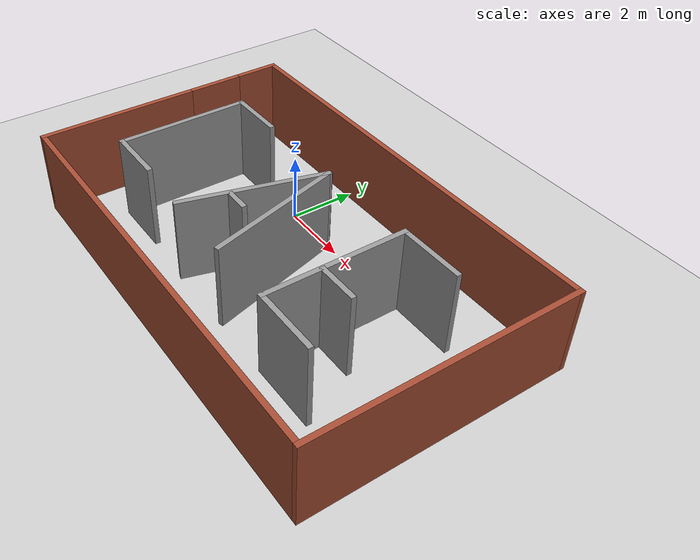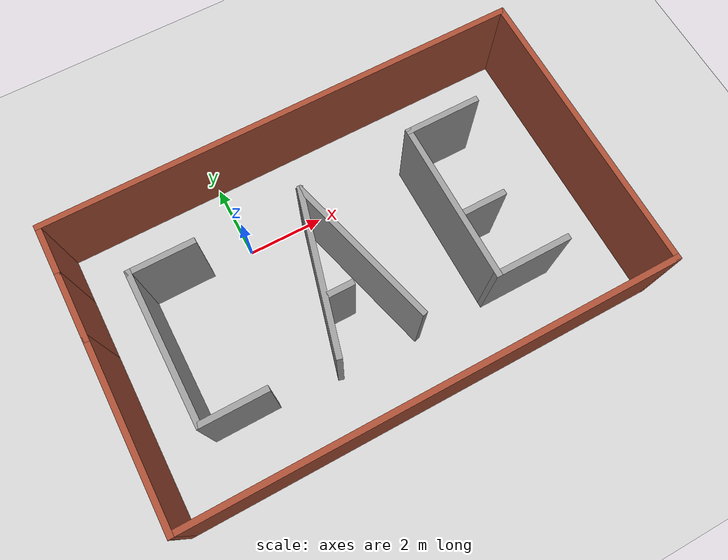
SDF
<sdf version="1.7">
 <world name="default">
  <light name="sun" type="directional">
   <pose>0 0 10 0 -0 0</pose>
   <diffuse>0.8 0.8 0.8 1</diffuse>
   <specular>0.2 0.2 0.2 1</specular>
   <attenuation>
    <range>1000</range>
    <constant>0.9</constant>
    <linear>0.01</linear>
    <quadratic>0.001</quadratic>
   </attenuation>
   <direction>-0.5 0.1 -0.9</direction>
   <spot><inner_angle>0</inner_angle><outer_angle>0</outer_angle><falloff>0</falloff></spot>
  </light>
  <model name="ground_plane">
   <static>1</static>
   <link name="link">
    <collision name="collision">
     <geometry><plane><normal>0 0 1</normal><size>100 100</size></plane></geometry>
     <surface>
      <contact><collide_bitmask>65535</collide_bitmask></contact>
      <friction><ode><mu>100</mu><mu2>50</mu2></ode></friction>
     </surface>
    </collision>
    <visual name="visual">
     <cast_shadows>0</cast_shadows>
     <geometry><plane><normal>0 0 1</normal><size>100 100</size></plane></geometry>
     <material>
      <script><uri>file://media/materials/scripts/gazebo.material</uri><name>Gazebo/Grey</name></script>
     </material>
    </visual>
   </link>
  </model>
  <gravity>0 0 -9.8</gravity>
  <magnetic_field>6e-06 2.3e-05 -4.2e-05</magnetic_field>
  <atmosphere type="adiabatic"/>
  <physics type="ode">
   <max_step_size>0.001</max_step_size>
   <real_time_factor>1</real_time_factor>
   <real_time_update_rate>1000</real_time_update_rate>
  </physics>
  <scene><ambient>0.4 0.4 0.4 1</ambient><background>0.7 0.7 0.7 1</background><shadows>1</shadows></scene>
  <spherical_coordinates>
   <surface_model>EARTH_WGS84</surface_model>
   <latitude_deg>0</latitude_deg>
   <longitude_deg>0</longitude_deg>
   <elevation>0</elevation>
   <heading_deg>0</heading_deg>
  </spherical_coordinates>
  <model name="CaeWorld">
   <pose>2.1 -1.82 0 0 -0 0</pose>
   <link name="Wall_0">
    <collision name="Wall_0_Collision">
     <geometry><box><size>4.75 0.15 2.5</size></box></geometry>
     <pose>0 0 1.25 0 -0 0</pose>
    </collision>
    <visual name="Wall_0_Visual">
     <pose>0 0 1.25 0 -0 0</pose>
     <geometry><box><size>4.75 0.15 2.5</size></box></geometry>
     <material>
      <script><uri>file://media/materials/scripts/gazebo.material</uri><name>Gazebo/Bricks</name></script>
      <ambient>1 1 1 1</ambient>
     </material>
     <meta><layer>0</layer></meta>
    </visual>
    <pose>-6.3 -1.5 0 0 -0 -1.5708</pose>
   </link>
   <link name="Wall_1">
    <collision name="Wall_1_Collision">
     <geometry><box><size>12.75 0.15 2.5</size></box></geometry>
     <pose>0 0 1.25 0 -0 0</pose>
    </collision>
    <visual name="Wall_1_Visual">
     <pose>0 0 1.25 0 -0 0</pose>
     <geometry><box><size>12.75 0.15 2.5</size></box></geometry>
     <material>
      <script><uri>file://media/materials/scripts/gazebo.material</uri><name>Gazebo/Bricks</name></script>
      <ambient>1 1 1 1</ambient>
     </material>
     <meta><layer>0</layer></meta>
    </visual>
    <pose>-0 -3.8 0 0 -0 0</pose>
   </link>
   <link name="Wall_12">
    <collision name="Wall_12_Collision">
     <geometry><box><size>1.75 0.15 2.5</size></box></geometry>
     <pose>0 0 1.25 0 -0 0</pose>
    </collision>
    <visual name="Wall_12_Visual">
     <pose>0 0 1.25 0 -0 0</pose>
     <geometry><box><size>1.75 0.15 2.5</size></box></geometry>
     <material>
      <script><uri>file://media/materials/scripts/gazebo.material</uri><name>Gazebo/Grey</name></script>
      <ambient>1 1 1 1</ambient>
     </material>
     <meta><layer>0</layer></meta>
    </visual>
    <pose>-4.08283 -2.0708 0 0 -0 0</pose>
   </link>
   <link name="Wall_14">
    <collision name="Wall_14_Collision">
     <geometry><box><size>4.25 0.15 2.5</size></box></geometry>
     <pose>0 0 1.25 0 -0 0</pose>
    </collision>
    <visual name="Wall_14_Visual">
     <pose>0 0 1.25 0 -0 0</pose>
     <geometry><box><size>4.25 0.15 2.5</size></box></geometry>
     <material>
      <script><uri>file://media/materials/scripts/gazebo.material</uri><name>Gazebo/Grey</name></script>
      <ambient>1 1 1 1</ambient>
     </material>
     <meta><layer>0</layer></meta>
    </visual>
    <pose>-1.0392 -0.186787 0 0 -0 1.309</pose>
   </link>
   <link name="Wall_15">
    <collision name="Wall_15_Collision">
     <geometry><box><size>4.25 0.15 2.5</size></box></geometry>
     <pose>0 0 1.25 0 -0 0</pose>
    </collision>
    <visual name="Wall_15_Visual">
     <pose>0 0 1.25 0 -0 0</pose>
     <geometry><box><size>4.25 0.15 2.5</size></box></geometry>
     <material>
      <script><uri>file://media/materials/scripts/gazebo.material</uri><name>Gazebo/Grey</name></script>
      <ambient>1 1 1 1</ambient>
     </material>
     <meta><layer>0</layer></meta>
    </visual>
    <pose>0.021961 -0.186787 0 0 -0 -1.309</pose>
   </link>
   <link name="Wall_18">
    <collision name="Wall_18_Collision">
     <geometry><box><size>0.75 0.15 2.5</size></box></geometry>
     <pose>0 0 1.25 0 -0 0</pose>
    </collision>
    <visual name="Wall_18_Visual">
     <pose>0 0 1.25 0 -0 0</pose>
     <geometry><box><size>0.75 0.15 2.5</size></box></geometry>
     <material>
      <script><uri>file://media/materials/scripts/gazebo.material</uri><name>Gazebo/Grey</name></script>
      <ambient>1 1 1 1</ambient>
     </material>
     <meta><layer>0</layer></meta>
    </visual>
    <pose>-0.841513 -0.820965 0 0 -0 0</pose>
   </link>
   <link name="Wall_2">
    <collision name="Wall_2_Collision">
     <geometry><box><size>7.75 0.15 2.5</size></box></geometry>
     <pose>0 0 1.25 0 -0 0</pose>
    </collision>
    <visual name="Wall_2_Visual">
     <pose>0 0 1.25 0 -0 0</pose>
     <geometry><box><size>7.75 0.15 2.5</size></box></geometry>
     <material>
      <script><uri>file://media/materials/scripts/gazebo.material</uri><name>Gazebo/Bricks</name></script>
      <ambient>1 1 1 1</ambient>
     </material>
     <meta><layer>0</layer></meta>
    </visual>
    <pose>6.3 0 0 0 -0 1.5708</pose>
   </link>
   <link name="Wall_20">
    <collision name="Wall_20_Collision">
     <geometry><box><size>4.25 0.15 2.5</size></box></geometry>
     <pose>0 0 1.25 0 -0 0</pose>
    </collision>
    <visual name="Wall_20_Visual">
     <pose>0 0 1.25 0 -0 0</pose>
     <geometry><box><size>4.25 0.15 2.5</size></box></geometry>
     <material>
      <script><uri>file://media/materials/scripts/gazebo.material</uri><name>Gazebo/Grey</name></script>
      <ambient>1 1 1 1</ambient>
     </material>
     <meta><layer>0</layer></meta>
    </visual>
    <pose>2.49872 -0.147525 0 0 -0 1.5708</pose>
   </link>
   <link name="Wall_21">
    <collision name="Wall_21_Collision">
     <geometry><box><size>2 0.15 2.5</size></box></geometry>
     <pose>0 0 1.25 0 -0 0</pose>
    </collision>
    <visual name="Wall_21_Visual">
     <pose>0 0 1.25 0 -0 0</pose>
     <geometry><box><size>2 0.15 2.5</size></box></geometry>
     <material>
      <script><uri>file://media/materials/scripts/gazebo.material</uri><name>Gazebo/Grey</name></script>
      <ambient>1 1 1 1</ambient>
     </material>
     <meta><layer>0</layer></meta>
    </visual>
    <pose>3.42372 1.90247 0 0 -0 0</pose>
   </link>
   <link name="Wall_23">
    <collision name="Wall_23_Collision">
     <geometry><box><size>1.25 0.15 2.5</size></box></geometry>
     <pose>0 0 1.25 0 -0 0</pose>
    </collision>
    <visual name="Wall_23_Visual">
     <pose>0 0 1.25 0 -0 0</pose>
     <geometry><box><size>1.25 0.15 2.5</size></box></geometry>
     <material>
      <script><uri>file://media/materials/scripts/gazebo.material</uri><name>Gazebo/Grey</name></script>
      <ambient>1 1 1 1</ambient>
     </material>
     <meta><layer>0</layer></meta>
    </visual>
    <pose>3.07931 -0.545653 0 0 -0 0</pose>
   </link>
   <link name="Wall_25">
    <collision name="Wall_25_Collision">
     <geometry><box><size>2 0.15 2.5</size></box></geometry>
     <pose>0 0 1.25 0 -0 0</pose>
    </collision>
    <visual name="Wall_25_Visual">
     <pose>0 0 1.25 0 -0 0</pose>
     <geometry><box><size>2 0.15 2.5</size></box></geometry>
     <material>
      <script><uri>file://media/materials/scripts/gazebo.material</uri><name>Gazebo/Grey</name></script>
      <ambient>1 1 1 1</ambient>
     </material>
     <meta><layer>0</layer></meta>
    </visual>
    <pose>3.42372 -2.19753 0 0 -0 0</pose>
   </link>
   <link name="Wall_3">
    <collision name="Wall_3_Collision">
     <geometry><box><size>12.75 0.15 2.5</size></box></geometry>
     <pose>0 0 1.25 0 -0 0</pose>
    </collision>
    <visual name="Wall_3_Visual">
     <pose>0 0 1.25 0 -0 0</pose>
     <geometry><box><size>12.75 0.15 2.5</size></box></geometry>
     <material>
      <script><uri>file://media/materials/scripts/gazebo.material</uri><name>Gazebo/Bricks</name></script>
      <ambient>1 1 1 1</ambient>
     </material>
     <meta><layer>0</layer></meta>
    </visual>
    <pose>-0 3.8 0 0 -0 3.14159</pose>
   </link>
   <link name="Wall_4">
    <collision name="Wall_4_Collision">
     <geometry><box><size>1.5 0.15 2.5</size></box></geometry>
     <pose>0 0 1.25 0 -0 0</pose>
    </collision>
    <visual name="Wall_4_Visual">
     <pose>0 0 1.25 0 -0 0</pose>
     <geometry><box><size>1.5 0.15 2.5</size></box></geometry>
     <material>
      <script><uri>file://media/materials/scripts/gazebo.material</uri><name>Gazebo/Bricks</name></script>
      <ambient>1 1 1 1</ambient>
     </material>
     <meta><layer>0</layer></meta>
    </visual>
    <pose>-6.3 3.125 0 0 -0 -1.5708</pose>
   </link>
   <link name="Wall_5">
    <collision name="Wall_5_Collision">
     <geometry><box><size>1.8 0.15 2.5</size></box></geometry>
     <pose>0 0 1.25 0 -0 0</pose>
    </collision>
    <visual name="Wall_5_Visual">
     <pose>0 0 1.25 0 -0 0</pose>
     <geometry><box><size>1.8 0.15 2.5</size></box></geometry>
     <material>
      <script><uri>file://media/materials/scripts/gazebo.material</uri><name>Gazebo/Bricks</name></script>
      <ambient>1 1 1 1</ambient>
     </material>
     <meta><layer>0</layer></meta>
    </visual>
    <pose>-6.3 1.625 0 0 -0 -1.5708</pose>
   </link>
   <link name="Wall_7">
    <collision name="Wall_7_Collision">
     <geometry><box><size>1.75 0.15 2.5</size></box></geometry>
     <pose>0 0 1.25 0 -0 0</pose>
    </collision>
    <visual name="Wall_7_Visual">
     <pose>0 0 1.25 0 -0 0</pose>
     <geometry><box><size>1.75 0.15 2.5</size></box></geometry>
     <material>
      <script><uri>file://media/materials/scripts/gazebo.material</uri><name>Gazebo/Grey</name></script>
      <ambient>1 1 1 1</ambient>
     </material>
     <meta><layer>0</layer></meta>
    </visual>
    <pose>-4.08283 1.7792 0 0 -0 3.14159</pose>
   </link>
   <link name="Wall_8">
    <collision name="Wall_8_Collision">
     <geometry><box><size>4 0.15 2.5</size></box></geometry>
     <pose>0 0 1.25 0 -0 0</pose>
    </collision>
    <visual name="Wall_8_Visual">
     <pose>0 0 1.25 0 -0 0</pose>
     <geometry><box><size>4 0.15 2.5</size></box></geometry>
     <material>
      <script><uri>file://media/materials/scripts/gazebo.material</uri><name>Gazebo/Grey</name></script>
      <ambient>1 1 1 1</ambient>
     </material>
     <meta><layer>0</layer></meta>
    </visual>
    <pose>-4.88283 -0.145795 0 0 -0 -1.5708</pose>
   </link>
   <static>1</static>
  </model>
  <audio><device>default</device></audio>
 </world>
</sdf>
